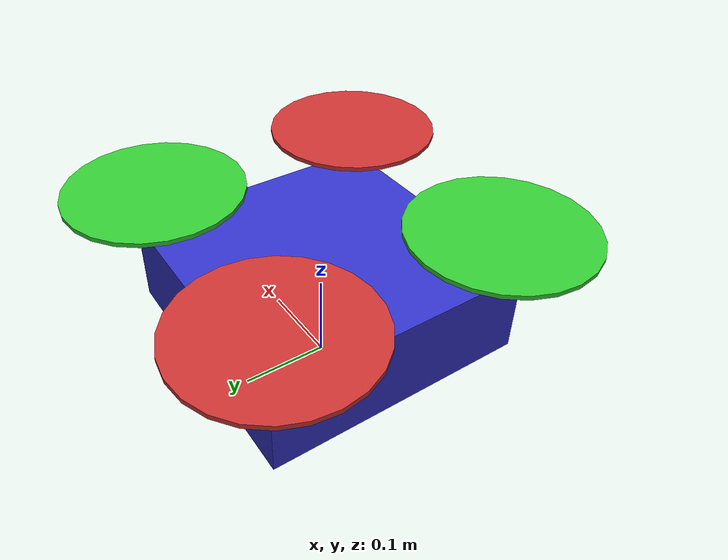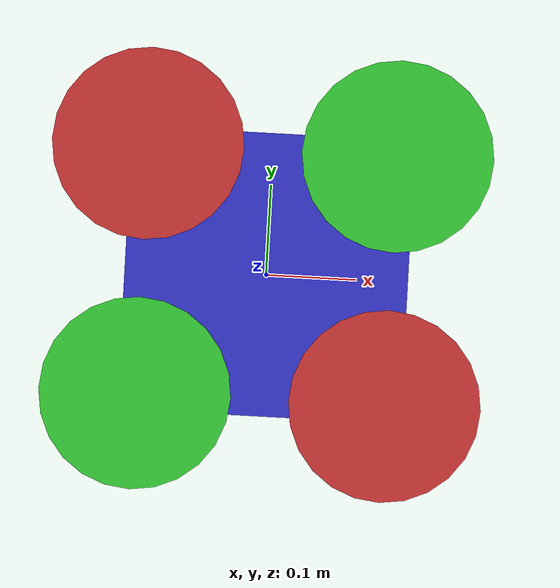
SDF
<?xml version="1.0" ?>
<sdf version="1.6">
  <model name="quadcopter">
    <static>false</static>

    <!-- Base Link -->
    <link name="base_link">
      <pose>0 0 0.1 0 0 0</pose>
      <inertial>
        <mass>1.5</mass>
        <inertia>
          <ixx>0.029125</ixx>
          <iyy>0.029125</iyy>
          <izz>0.055225</izz>
          <ixy>0</ixy>
          <ixz>0</ixz>
          <iyz>0</iyz>
        </inertia>
      </inertial>

      <!-- Visual -->
      <visual name="body_visual">
        <geometry>
          <box>
            <size>0.3 0.3 0.1</size>
          </box>
        </geometry>
        <material>
          <ambient>0.2 0.2 0.8 1</ambient>
          <diffuse>0.2 0.2 0.8 1</diffuse>
        </material>
      </visual>

      <!-- Collision -->
      <collision name="body_collision">
        <geometry>
          <box>
            <size>0.3 0.3 0.1</size>
          </box>
        </geometry>
      </collision>

      <!-- IMU Sensor -->
      <sensor name="imu_sensor" type="imu">
        <always_on>true</always_on>
        <update_rate>100</update_rate>
        <imu>
          <angular_velocity>
            <x>
              <noise type="gaussian">
                <mean>0.0</mean>
                <stddev>0.01</stddev>
              </noise>
            </x>
            <y>
              <noise type="gaussian">
                <mean>0.0</mean>
                <stddev>0.01</stddev>
              </noise>
            </y>
            <z>
              <noise type="gaussian">
                <mean>0.0</mean>
                <stddev>0.01</stddev>
              </noise>
            </z>
          </angular_velocity>
          <linear_acceleration>
            <x>
              <noise type="gaussian">
                <mean>0.0</mean>
                <stddev>0.1</stddev>
              </noise>
            </x>
            <y>
              <noise type="gaussian">
                <mean>0.0</mean>
                <stddev>0.1</stddev>
              </noise>
            </y>
            <z>
              <noise type="gaussian">
                <mean>0.0</mean>
                <stddev>0.1</stddev>
              </noise>
            </z>
          </linear_acceleration>
        </imu>
        <plugin filename="libgazebo_ros_imu_sensor.so" name="imu_plugin">
          <robotNamespace>/uav</robotNamespace>
          <topicName>imu/data</topicName>
          <frameName>imu_link</frameName>
        </plugin>
      </sensor>

      <!-- Camera -->
      <sensor name="camera" type="camera">
        <pose>0.15 0 0.05 0 0 0</pose>
        <camera>
          <horizontal_fov>1.047</horizontal_fov>
          <image>
            <width>640</width>
            <height>480</height>
          </image>
          <clip>
            <near>0.1</near>
            <far>100</far>
          </clip>
        </camera>
        <always_on>true</always_on>
        <update_rate>30</update_rate>
        <plugin filename="libgazebo_ros_camera.so" name="camera_plugin">
          <robotNamespace>/uav</robotNamespace>
          <imageTopicName>camera/image_raw</imageTopicName>
          <cameraInfoTopicName>camera/camera_info</cameraInfoTopicName>
          <frameName>camera_link</frameName>
        </plugin>
      </sensor>

      <!-- GPS -->
      <sensor name="gps" type="gps">
        <always_on>true</always_on>
        <update_rate>10</update_rate>
        <plugin filename="libgazebo_ros_gps_sensor.so" name="gps_plugin">
          <robotNamespace>/uav</robotNamespace>
          <topicName>gps/fix</topicName>
          <velocityTopicName>gps/vel</velocityTopicName>
          <referenceLatitude>37.7749</referenceLatitude>
          <referenceLongitude>-122.4194</referenceLongitude>
        </plugin>
      </sensor>

      <!-- Sonar for altitude -->
      <sensor name="sonar" type="ray">
        <pose>0 0 -0.05 0 1.57 0</pose>
        <ray>
          <scan>
            <horizontal>
              <samples>1</samples>
              <resolution>1</resolution>
              <min_angle>0</min_angle>
              <max_angle>0</max_angle>
            </horizontal>
          </scan>
          <range>
            <min>0.1</min>
            <max>10</max>
            <resolution>0.01</resolution>
          </range>
        </ray>
        <always_on>true</always_on>
        <update_rate>20</update_rate>
        <plugin filename="libgazebo_ros_range.so" name="sonar_plugin">
          <robotNamespace>/uav</robotNamespace>
          <topicName>sonar/altitude</topicName>
          <frameName>sonar_link</frameName>
          <radiation>ultrasound</radiation>
          <fov>0.5</fov>
        </plugin>
      </sensor>
    </link>

    <!-- Front Right Rotor -->
    <link name="rotor_0">
      <pose>0.13 -0.13 0.2 0 0 0</pose>
      <inertial>
        <mass>0.05</mass>
        <inertia>
          <ixx>9.75e-06</ixx>
          <iyy>4.17e-05</iyy>
          <izz>4.17e-05</izz>
        </inertia>
      </inertial>
      <visual name="visual">
        <geometry>
          <cylinder>
            <radius>0.1</radius>
            <length>0.005</length>
          </cylinder>
        </geometry>
        <material>
          <ambient>0.8 0.2 0.2 1</ambient>
        </material>
      </visual>
    </link>
    <joint name="rotor_0_joint" type="revolute">
      <parent>base_link</parent>
      <child>rotor_0</child>
      <axis>
        <xyz>0 0 1</xyz>
      </axis>
    </joint>

    <!-- Front Left Rotor -->
    <link name="rotor_1">
      <pose>0.13 0.13 0.2 0 0 0</pose>
      <inertial>
        <mass>0.05</mass>
        <inertia>
          <ixx>9.75e-06</ixx>
          <iyy>4.17e-05</iyy>
          <izz>4.17e-05</izz>
        </inertia>
      </inertial>
      <visual name="visual">
        <geometry>
          <cylinder>
            <radius>0.1</radius>
            <length>0.005</length>
          </cylinder>
        </geometry>
        <material>
          <ambient>0.2 0.8 0.2 1</ambient>
        </material>
      </visual>
    </link>
    <joint name="rotor_1_joint" type="revolute">
      <parent>base_link</parent>
      <child>rotor_1</child>
      <axis>
        <xyz>0 0 1</xyz>
      </axis>
    </joint>

    <!-- Rear Right Rotor -->
    <link name="rotor_2">
      <pose>-0.13 -0.13 0.2 0 0 0</pose>
      <inertial>
        <mass>0.05</mass>
        <inertia>
          <ixx>9.75e-06</ixx>
          <iyy>4.17e-05</iyy>
          <izz>4.17e-05</izz>
        </inertia>
      </inertial>
      <visual name="visual">
        <geometry>
          <cylinder>
            <radius>0.1</radius>
            <length>0.005</length>
          </cylinder>
        </geometry>
        <material>
          <ambient>0.2 0.8 0.2 1</ambient>
        </material>
      </visual>
    </link>
    <joint name="rotor_2_joint" type="revolute">
      <parent>base_link</parent>
      <child>rotor_2</child>
      <axis>
        <xyz>0 0 1</xyz>
      </axis>
    </joint>

    <!-- Rear Left Rotor -->
    <link name="rotor_3">
      <pose>-0.13 0.13 0.2 0 0 0</pose>
      <inertial>
        <mass>0.05</mass>
        <inertia>
          <ixx>9.75e-06</ixx>
          <iyy>4.17e-05</iyy>
          <izz>4.17e-05</izz>
        </inertia>
      </inertial>
      <visual name="visual">
        <geometry>
          <cylinder>
            <radius>0.1</radius>
            <length>0.005</length>
          </cylinder>
        </geometry>
        <material>
          <ambient>0.8 0.2 0.2 1</ambient>
        </material>
      </visual>
    </link>
    <joint name="rotor_3_joint" type="revolute">
      <parent>base_link</parent>
      <child>rotor_3</child>
      <axis>
        <xyz>0 0 1</xyz>
      </axis>
    </joint>

    <!-- ROS2 Plugin -->
    <plugin filename="libgazebo_ros2_control.so" name="gazebo_ros2_control">
      <robot_param>robot_description</robot_param>
      <robot_param_node>robot_state_publisher</robot_param_node>
      <parameters>$(find test_simulation)/config/uav_controllers.yaml</parameters>
    </plugin>

    <!-- Battery Plugin -->
    <plugin filename="libgazebo_ros_battery.so" name="battery_plugin">
      <robotNamespace>/uav</robotNamespace>
      <topicName>battery/state</topicName>
      <capacity>5000</capacity>
      <voltage>14.8</voltage>
    </plugin>
  </model>
</sdf>
